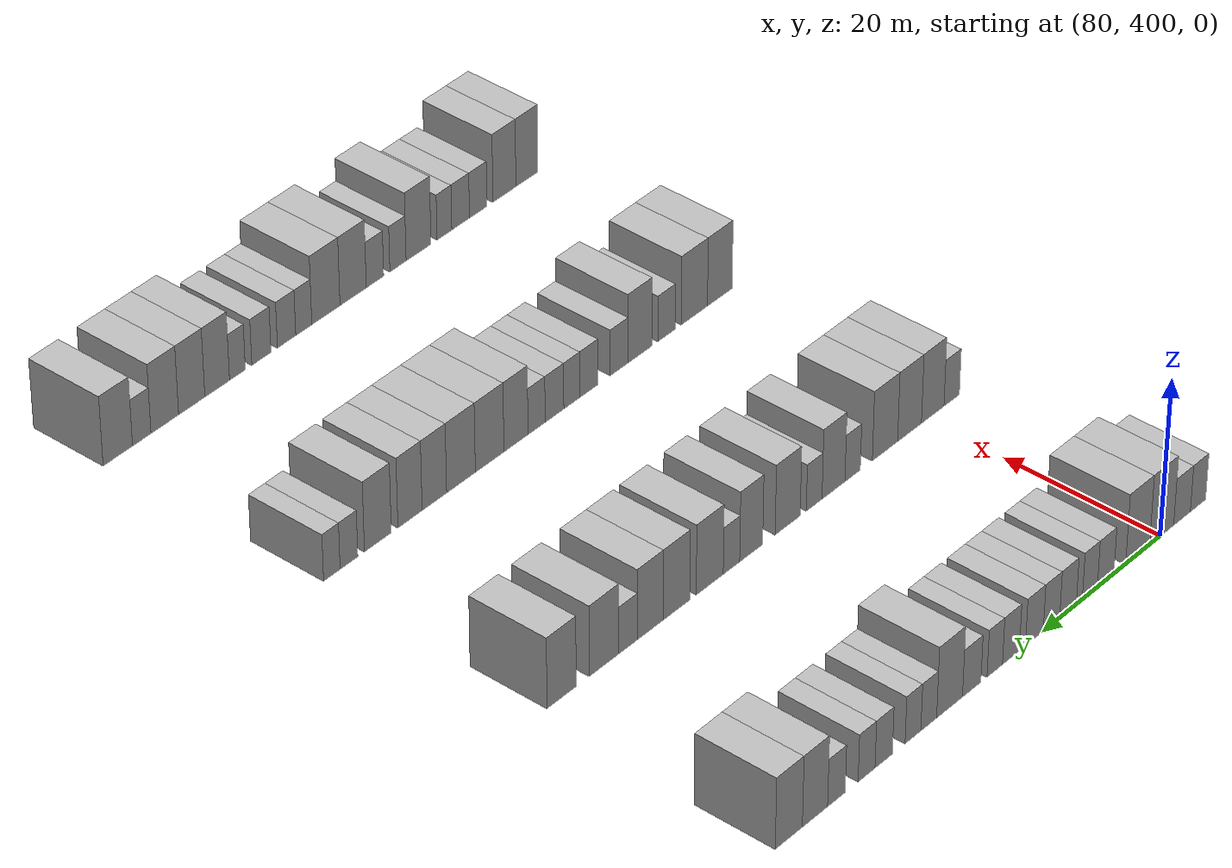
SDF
<sdf version="1.6">
 <world name="default">
  <model name="building_661">
   <static>1</static>
   <pose>85.0000 393.5579 0 0.000000 0.000000 0.000000</pose>
   <link name="link">
    <pose>0 0 3.00 0 0 0</pose>
    <collision name="collision"><geometry><box><size>10.0000 2.6555 6.0000</size></box></geometry></collision>
    <visual name="visual">
     <cast_shadows>0</cast_shadows>
     <geometry><box><size>10.0000 2.6555 6.0000</size></box></geometry>
     <material>
      <script>
       <uri>model://HANNAS_wall/materials/scripts</uri>
       <uri>model://HANNAS_wall/materials/textures</uri>
       <name>vrc/HANNAS_wall</name>
      </script>
     </material>
    </visual>
   </link>
  </model>
  <model name="building_662">
   <static>1</static>
   <pose>85.0000 396.3360 0 0.000000 0.000000 0.000000</pose>
   <link name="link">
    <pose>0 0 3.00 0 0 0</pose>
    <collision name="collision"><geometry><box><size>10.0000 2.9007 6.0000</size></box></geometry></collision>
    <visual name="visual">
     <cast_shadows>0</cast_shadows>
     <geometry><box><size>10.0000 2.9007 6.0000</size></box></geometry>
     <material>
      <script>
       <uri>model://HANNAS_wall/materials/scripts</uri>
       <uri>model://HANNAS_wall/materials/textures</uri>
       <name>vrc/HANNAS_wall</name>
      </script>
     </material>
    </visual>
   </link>
  </model>
  <model name="building_663">
   <static>1</static>
   <pose>85.0000 399.8499 0 0.000000 0.000000 0.000000</pose>
   <link name="link">
    <pose>0 0 4.50 0 0 0</pose>
    <collision name="collision"><geometry><box><size>10.0000 4.1272 9.0000</size></box></geometry></collision>
    <visual name="visual">
     <cast_shadows>0</cast_shadows>
     <geometry><box><size>10.0000 4.1272 9.0000</size></box></geometry>
     <material>
      <script>
       <uri>model://HANNAS_wall/materials/scripts</uri>
       <uri>model://HANNAS_wall/materials/textures</uri>
       <name>vrc/HANNAS_wall</name>
      </script>
     </material>
    </visual>
   </link>
  </model>
  <model name="building_664">
   <static>1</static>
   <pose>85.0000 403.9608 0 0.000000 0.000000 0.000000</pose>
   <link name="link">
    <pose>0 0 4.50 0 0 0</pose>
    <collision name="collision"><geometry><box><size>10.0000 4.0947 9.0000</size></box></geometry></collision>
    <visual name="visual">
     <cast_shadows>0</cast_shadows>
     <geometry><box><size>10.0000 4.0947 9.0000</size></box></geometry>
     <material>
      <script>
       <uri>model://HANNAS_wall/materials/scripts</uri>
       <uri>model://HANNAS_wall/materials/textures</uri>
       <name>vrc/HANNAS_wall</name>
      </script>
     </material>
    </visual>
   </link>
  </model>
  <model name="building_665">
   <static>1</static>
   <pose>85.0000 409.4031 0 0.000000 0.000000 0.000000</pose>
   <link name="link">
    <pose>0 0 3.00 0 0 0</pose>
    <collision name="collision"><geometry><box><size>10.0000 2.7898 6.0000</size></box></geometry></collision>
    <visual name="visual">
     <cast_shadows>0</cast_shadows>
     <geometry><box><size>10.0000 2.7898 6.0000</size></box></geometry>
     <material>
      <script>
       <uri>model://HANNAS_wall/materials/scripts</uri>
       <uri>model://HANNAS_wall/materials/textures</uri>
       <name>vrc/HANNAS_wall</name>
      </script>
     </material>
    </visual>
   </link>
  </model>
  <model name="building_666">
   <static>1</static>
   <pose>85.0000 412.0648 0 0.000000 0.000000 0.000000</pose>
   <link name="link">
    <pose>0 0 3.00 0 0 0</pose>
    <collision name="collision"><geometry><box><size>10.0000 2.5337 6.0000</size></box></geometry></collision>
    <visual name="visual">
     <cast_shadows>0</cast_shadows>
     <geometry><box><size>10.0000 2.5337 6.0000</size></box></geometry>
     <material>
      <script>
       <uri>model://HANNAS_wall/materials/scripts</uri>
       <uri>model://HANNAS_wall/materials/textures</uri>
       <name>vrc/HANNAS_wall</name>
      </script>
     </material>
    </visual>
   </link>
  </model>
  <model name="building_667">
   <static>1</static>
   <pose>85.0000 415.7203 0 0.000000 0.000000 0.000000</pose>
   <link name="link">
    <pose>0 0 3.00 0 0 0</pose>
    <collision name="collision"><geometry><box><size>10.0000 2.7773 6.0000</size></box></geometry></collision>
    <visual name="visual">
     <cast_shadows>0</cast_shadows>
     <geometry><box><size>10.0000 2.7773 6.0000</size></box></geometry>
     <material>
      <script>
       <uri>model://HANNAS_wall/materials/scripts</uri>
       <uri>model://HANNAS_wall/materials/textures</uri>
       <name>vrc/HANNAS_wall</name>
      </script>
     </material>
    </visual>
   </link>
  </model>
  <model name="building_668">
   <static>1</static>
   <pose>85.0000 418.4652 0 0.000000 0.000000 0.000000</pose>
   <link name="link">
    <pose>0 0 3.00 0 0 0</pose>
    <collision name="collision"><geometry><box><size>10.0000 2.7123 6.0000</size></box></geometry></collision>
    <visual name="visual">
     <cast_shadows>0</cast_shadows>
     <geometry><box><size>10.0000 2.7123 6.0000</size></box></geometry>
     <material>
      <script>
       <uri>model://HANNAS_wall/materials/scripts</uri>
       <uri>model://HANNAS_wall/materials/textures</uri>
       <name>vrc/HANNAS_wall</name>
      </script>
     </material>
    </visual>
   </link>
  </model>
  <model name="building_669">
   <static>1</static>
   <pose>85.0000 421.2909 0 0.000000 0.000000 0.000000</pose>
   <link name="link">
    <pose>0 0 3.00 0 0 0</pose>
    <collision name="collision"><geometry><box><size>10.0000 2.9391 6.0000</size></box></geometry></collision>
    <visual name="visual">
     <cast_shadows>0</cast_shadows>
     <geometry><box><size>10.0000 2.9391 6.0000</size></box></geometry>
     <material>
      <script>
       <uri>model://HANNAS_wall/materials/scripts</uri>
       <uri>model://HANNAS_wall/materials/textures</uri>
       <name>vrc/HANNAS_wall</name>
      </script>
     </material>
    </visual>
   </link>
  </model>
  <model name="building_670">
   <static>1</static>
   <pose>85.0000 425.1434 0 0.000000 0.000000 0.000000</pose>
   <link name="link">
    <pose>0 0 3.00 0 0 0</pose>
    <collision name="collision"><geometry><box><size>10.0000 2.7660 6.0000</size></box></geometry></collision>
    <visual name="visual">
     <cast_shadows>0</cast_shadows>
     <geometry><box><size>10.0000 2.7660 6.0000</size></box></geometry>
     <material>
      <script>
       <uri>model://HANNAS_wall/materials/scripts</uri>
       <uri>model://HANNAS_wall/materials/textures</uri>
       <name>vrc/HANNAS_wall</name>
      </script>
     </material>
    </visual>
   </link>
  </model>
  <model name="building_671">
   <static>1</static>
   <pose>85.0000 427.7820 0 0.000000 0.000000 0.000000</pose>
   <link name="link">
    <pose>0 0 3.00 0 0 0</pose>
    <collision name="collision"><geometry><box><size>10.0000 2.5112 6.0000</size></box></geometry></collision>
    <visual name="visual">
     <cast_shadows>0</cast_shadows>
     <geometry><box><size>10.0000 2.5112 6.0000</size></box></geometry>
     <material>
      <script>
       <uri>model://HANNAS_wall/materials/scripts</uri>
       <uri>model://HANNAS_wall/materials/textures</uri>
       <name>vrc/HANNAS_wall</name>
      </script>
     </material>
    </visual>
   </link>
  </model>
  <model name="building_672">
   <static>1</static>
   <pose>85.0000 431.5215 0 0.000000 0.000000 0.000000</pose>
   <link name="link">
    <pose>0 0 3.00 0 0 0</pose>
    <collision name="collision"><geometry><box><size>10.0000 2.9678 6.0000</size></box></geometry></collision>
    <visual name="visual">
     <cast_shadows>0</cast_shadows>
     <geometry><box><size>10.0000 2.9678 6.0000</size></box></geometry>
     <material>
      <script>
       <uri>model://HANNAS_wall/materials/scripts</uri>
       <uri>model://HANNAS_wall/materials/textures</uri>
       <name>vrc/HANNAS_wall</name>
      </script>
     </material>
    </visual>
   </link>
  </model>
  <model name="building_673">
   <static>1</static>
   <pose>85.0000 435.0747 0 0.000000 0.000000 0.000000</pose>
   <link name="link">
    <pose>0 0 4.50 0 0 0</pose>
    <collision name="collision"><geometry><box><size>10.0000 4.1387 9.0000</size></box></geometry></collision>
    <visual name="visual">
     <cast_shadows>0</cast_shadows>
     <geometry><box><size>10.0000 4.1387 9.0000</size></box></geometry>
     <material>
      <script>
       <uri>model://HANNAS_wall/materials/scripts</uri>
       <uri>model://HANNAS_wall/materials/textures</uri>
       <name>vrc/HANNAS_wall</name>
      </script>
     </material>
    </visual>
   </link>
  </model>
  <model name="building_674">
   <static>1</static>
   <pose>85.0000 438.4006 0 0.000000 0.000000 0.000000</pose>
   <link name="link">
    <pose>0 0 3.00 0 0 0</pose>
    <collision name="collision"><geometry><box><size>10.0000 2.5131 6.0000</size></box></geometry></collision>
    <visual name="visual">
     <cast_shadows>0</cast_shadows>
     <geometry><box><size>10.0000 2.5131 6.0000</size></box></geometry>
     <material>
      <script>
       <uri>model://HANNAS_wall/materials/scripts</uri>
       <uri>model://HANNAS_wall/materials/textures</uri>
       <name>vrc/HANNAS_wall</name>
      </script>
     </material>
    </visual>
   </link>
  </model>
  <model name="building_675">
   <static>1</static>
   <pose>85.0000 440.9042 0 0.000000 0.000000 0.000000</pose>
   <link name="link">
    <pose>0 0 3.00 0 0 0</pose>
    <collision name="collision"><geometry><box><size>10.0000 2.4942 6.0000</size></box></geometry></collision>
    <visual name="visual">
     <cast_shadows>0</cast_shadows>
     <geometry><box><size>10.0000 2.4942 6.0000</size></box></geometry>
     <material>
      <script>
       <uri>model://HANNAS_wall/materials/scripts</uri>
       <uri>model://HANNAS_wall/materials/textures</uri>
       <name>vrc/HANNAS_wall</name>
      </script>
     </material>
    </visual>
   </link>
  </model>
  <model name="building_676">
   <static>1</static>
   <pose>85.0000 445.5110 0 0.000000 0.000000 0.000000</pose>
   <link name="link">
    <pose>0 0 3.00 0 0 0</pose>
    <collision name="collision"><geometry><box><size>10.0000 2.7194 6.0000</size></box></geometry></collision>
    <visual name="visual">
     <cast_shadows>0</cast_shadows>
     <geometry><box><size>10.0000 2.7194 6.0000</size></box></geometry>
     <material>
      <script>
       <uri>model://HANNAS_wall/materials/scripts</uri>
       <uri>model://HANNAS_wall/materials/textures</uri>
       <name>vrc/HANNAS_wall</name>
      </script>
     </material>
    </visual>
   </link>
  </model>
  <model name="building_677">
   <static>1</static>
   <pose>85.0000 448.1878 0 0.000000 0.000000 0.000000</pose>
   <link name="link">
    <pose>0 0 3.00 0 0 0</pose>
    <collision name="collision"><geometry><box><size>10.0000 2.6342 6.0000</size></box></geometry></collision>
    <visual name="visual">
     <cast_shadows>0</cast_shadows>
     <geometry><box><size>10.0000 2.6342 6.0000</size></box></geometry>
     <material>
      <script>
       <uri>model://HANNAS_wall/materials/scripts</uri>
       <uri>model://HANNAS_wall/materials/textures</uri>
       <name>vrc/HANNAS_wall</name>
      </script>
     </material>
    </visual>
   </link>
  </model>
  <model name="building_678">
   <static>1</static>
   <pose>85.0000 452.8680 0 0.000000 0.000000 0.000000</pose>
   <link name="link">
    <pose>0 0 3.00 0 0 0</pose>
    <collision name="collision"><geometry><box><size>10.0000 2.7262 6.0000</size></box></geometry></collision>
    <visual name="visual">
     <cast_shadows>0</cast_shadows>
     <geometry><box><size>10.0000 2.7262 6.0000</size></box></geometry>
     <material>
      <script>
       <uri>model://HANNAS_wall/materials/scripts</uri>
       <uri>model://HANNAS_wall/materials/textures</uri>
       <name>vrc/HANNAS_wall</name>
      </script>
     </material>
    </visual>
   </link>
  </model>
  <model name="building_679">
   <static>1</static>
   <pose>85.0000 456.1625 0 0.000000 0.000000 0.000000</pose>
   <link name="link">
    <pose>0 0 4.50 0 0 0</pose>
    <collision name="collision"><geometry><box><size>10.0000 3.8630 9.0000</size></box></geometry></collision>
    <visual name="visual">
     <cast_shadows>0</cast_shadows>
     <geometry><box><size>10.0000 3.8630 9.0000</size></box></geometry>
     <material>
      <script>
       <uri>model://HANNAS_wall/materials/scripts</uri>
       <uri>model://HANNAS_wall/materials/textures</uri>
       <name>vrc/HANNAS_wall</name>
      </script>
     </material>
    </visual>
   </link>
  </model>
  <model name="building_680">
   <static>1</static>
   <pose>85.0000 460.1552 0 0.000000 0.000000 0.000000</pose>
   <link name="link">
    <pose>0 0 4.50 0 0 0</pose>
    <collision name="collision"><geometry><box><size>10.0000 4.1223 9.0000</size></box></geometry></collision>
    <visual name="visual">
     <cast_shadows>0</cast_shadows>
     <geometry><box><size>10.0000 4.1223 9.0000</size></box></geometry>
     <material>
      <script>
       <uri>model://HANNAS_wall/materials/scripts</uri>
       <uri>model://HANNAS_wall/materials/textures</uri>
       <name>vrc/HANNAS_wall</name>
      </script>
     </material>
    </visual>
   </link>
  </model>
  <model name="building_904">
   <static>1</static>
   <pose>115.0000 395.7468 0 0.000000 0.000000 0.000000</pose>
   <link name="link">
    <pose>0 0 3.00 0 0 0</pose>
    <collision name="collision"><geometry><box><size>10.0000 2.6313 6.0000</size></box></geometry></collision>
    <visual name="visual">
     <cast_shadows>0</cast_shadows>
     <geometry><box><size>10.0000 2.6313 6.0000</size></box></geometry>
     <material>
      <script>
       <uri>model://HANNAS_wall/materials/scripts</uri>
       <uri>model://HANNAS_wall/materials/textures</uri>
       <name>vrc/HANNAS_wall</name>
      </script>
     </material>
    </visual>
   </link>
  </model>
  <model name="building_905">
   <static>1</static>
   <pose>115.0000 398.9806 0 0.000000 0.000000 0.000000</pose>
   <link name="link">
    <pose>0 0 4.50 0 0 0</pose>
    <collision name="collision"><geometry><box><size>10.0000 3.8362 9.0000</size></box></geometry></collision>
    <visual name="visual">
     <cast_shadows>0</cast_shadows>
     <geometry><box><size>10.0000 3.8362 9.0000</size></box></geometry>
     <material>
      <script>
       <uri>model://HANNAS_wall/materials/scripts</uri>
       <uri>model://HANNAS_wall/materials/textures</uri>
       <name>vrc/HANNAS_wall</name>
      </script>
     </material>
    </visual>
   </link>
  </model>
  <model name="building_906">
   <static>1</static>
   <pose>115.0000 402.9096 0 0.000000 0.000000 0.000000</pose>
   <link name="link">
    <pose>0 0 4.50 0 0 0</pose>
    <collision name="collision"><geometry><box><size>10.0000 4.0219 9.0000</size></box></geometry></collision>
    <visual name="visual">
     <cast_shadows>0</cast_shadows>
     <geometry><box><size>10.0000 4.0219 9.0000</size></box></geometry>
     <material>
      <script>
       <uri>model://HANNAS_wall/materials/scripts</uri>
       <uri>model://HANNAS_wall/materials/textures</uri>
       <name>vrc/HANNAS_wall</name>
      </script>
     </material>
    </visual>
   </link>
  </model>
  <model name="building_907">
   <static>1</static>
   <pose>115.0000 407.0328 0 0.000000 0.000000 0.000000</pose>
   <link name="link">
    <pose>0 0 4.50 0 0 0</pose>
    <collision name="collision"><geometry><box><size>10.0000 4.2246 9.0000</size></box></geometry></collision>
    <visual name="visual">
     <cast_shadows>0</cast_shadows>
     <geometry><box><size>10.0000 4.2246 9.0000</size></box></geometry>
     <material>
      <script>
       <uri>model://HANNAS_wall/materials/scripts</uri>
       <uri>model://HANNAS_wall/materials/textures</uri>
       <name>vrc/HANNAS_wall</name>
      </script>
     </material>
    </visual>
   </link>
  </model>
  <model name="building_908">
   <static>1</static>
   <pose>115.0000 412.4163 0 0.000000 0.000000 0.000000</pose>
   <link name="link">
    <pose>0 0 3.00 0 0 0</pose>
    <collision name="collision"><geometry><box><size>10.0000 2.5422 6.0000</size></box></geometry></collision>
    <visual name="visual">
     <cast_shadows>0</cast_shadows>
     <geometry><box><size>10.0000 2.5422 6.0000</size></box></geometry>
     <material>
      <script>
       <uri>model://HANNAS_wall/materials/scripts</uri>
       <uri>model://HANNAS_wall/materials/textures</uri>
       <name>vrc/HANNAS_wall</name>
      </script>
     </material>
    </visual>
   </link>
  </model>
  <model name="building_909">
   <static>1</static>
   <pose>115.0000 415.5724 0 0.000000 0.000000 0.000000</pose>
   <link name="link">
    <pose>0 0 4.50 0 0 0</pose>
    <collision name="collision"><geometry><box><size>10.0000 3.7701 9.0000</size></box></geometry></collision>
    <visual name="visual">
     <cast_shadows>0</cast_shadows>
     <geometry><box><size>10.0000 3.7701 9.0000</size></box></geometry>
     <material>
      <script>
       <uri>model://HANNAS_wall/materials/scripts</uri>
       <uri>model://HANNAS_wall/materials/textures</uri>
       <name>vrc/HANNAS_wall</name>
      </script>
     </material>
    </visual>
   </link>
  </model>
  <model name="building_910">
   <static>1</static>
   <pose>115.0000 418.7434 0 0.000000 0.000000 0.000000</pose>
   <link name="link">
    <pose>0 0 3.00 0 0 0</pose>
    <collision name="collision"><geometry><box><size>10.0000 2.5719 6.0000</size></box></geometry></collision>
    <visual name="visual">
     <cast_shadows>0</cast_shadows>
     <geometry><box><size>10.0000 2.5719 6.0000</size></box></geometry>
     <material>
      <script>
       <uri>model://HANNAS_wall/materials/scripts</uri>
       <uri>model://HANNAS_wall/materials/textures</uri>
       <name>vrc/HANNAS_wall</name>
      </script>
     </material>
    </visual>
   </link>
  </model>
  <model name="building_911">
   <static>1</static>
   <pose>115.0000 423.0607 0 0.000000 0.000000 0.000000</pose>
   <link name="link">
    <pose>0 0 4.50 0 0 0</pose>
    <collision name="collision"><geometry><box><size>10.0000 4.0627 9.0000</size></box></geometry></collision>
    <visual name="visual">
     <cast_shadows>0</cast_shadows>
     <geometry><box><size>10.0000 4.0627 9.0000</size></box></geometry>
     <material>
      <script>
       <uri>model://HANNAS_wall/materials/scripts</uri>
       <uri>model://HANNAS_wall/materials/textures</uri>
       <name>vrc/HANNAS_wall</name>
      </script>
     </material>
    </visual>
   </link>
  </model>
  <model name="building_912">
   <static>1</static>
   <pose>115.0000 428.9340 0 0.000000 0.000000 0.000000</pose>
   <link name="link">
    <pose>0 0 4.50 0 0 0</pose>
    <collision name="collision"><geometry><box><size>10.0000 3.6838 9.0000</size></box></geometry></collision>
    <visual name="visual">
     <cast_shadows>0</cast_shadows>
     <geometry><box><size>10.0000 3.6838 9.0000</size></box></geometry>
     <material>
      <script>
       <uri>model://HANNAS_wall/materials/scripts</uri>
       <uri>model://HANNAS_wall/materials/textures</uri>
       <name>vrc/HANNAS_wall</name>
      </script>
     </material>
    </visual>
   </link>
  </model>
  <model name="building_913">
   <static>1</static>
   <pose>115.0000 432.0807 0 0.000000 0.000000 0.000000</pose>
   <link name="link">
    <pose>0 0 3.00 0 0 0</pose>
    <collision name="collision"><geometry><box><size>10.0000 2.6095 6.0000</size></box></geometry></collision>
    <visual name="visual">
     <cast_shadows>0</cast_shadows>
     <geometry><box><size>10.0000 2.6095 6.0000</size></box></geometry>
     <material>
      <script>
       <uri>model://HANNAS_wall/materials/scripts</uri>
       <uri>model://HANNAS_wall/materials/textures</uri>
       <name>vrc/HANNAS_wall</name>
      </script>
     </material>
    </visual>
   </link>
  </model>
  <model name="building_914">
   <static>1</static>
   <pose>115.0000 435.5246 0 0.000000 0.000000 0.000000</pose>
   <link name="link">
    <pose>0 0 4.50 0 0 0</pose>
    <collision name="collision"><geometry><box><size>10.0000 4.2783 9.0000</size></box></geometry></collision>
    <visual name="visual">
     <cast_shadows>0</cast_shadows>
     <geometry><box><size>10.0000 4.2783 9.0000</size></box></geometry>
     <material>
      <script>
       <uri>model://HANNAS_wall/materials/scripts</uri>
       <uri>model://HANNAS_wall/materials/textures</uri>
       <name>vrc/HANNAS_wall</name>
      </script>
     </material>
    </visual>
   </link>
  </model>
  <model name="building_915">
   <static>1</static>
   <pose>115.0000 440.7452 0 0.000000 0.000000 0.000000</pose>
   <link name="link">
    <pose>0 0 4.50 0 0 0</pose>
    <collision name="collision"><geometry><box><size>10.0000 4.1629 9.0000</size></box></geometry></collision>
    <visual name="visual">
     <cast_shadows>0</cast_shadows>
     <geometry><box><size>10.0000 4.1629 9.0000</size></box></geometry>
     <material>
      <script>
       <uri>model://HANNAS_wall/materials/scripts</uri>
       <uri>model://HANNAS_wall/materials/textures</uri>
       <name>vrc/HANNAS_wall</name>
      </script>
     </material>
    </visual>
   </link>
  </model>
  <model name="building_916">
   <static>1</static>
   <pose>115.0000 444.8431 0 0.000000 0.000000 0.000000</pose>
   <link name="link">
    <pose>0 0 4.50 0 0 0</pose>
    <collision name="collision"><geometry><box><size>10.0000 4.0330 9.0000</size></box></geometry></collision>
    <visual name="visual">
     <cast_shadows>0</cast_shadows>
     <geometry><box><size>10.0000 4.0330 9.0000</size></box></geometry>
     <material>
      <script>
       <uri>model://HANNAS_wall/materials/scripts</uri>
       <uri>model://HANNAS_wall/materials/textures</uri>
       <name>vrc/HANNAS_wall</name>
      </script>
     </material>
    </visual>
   </link>
  </model>
  <model name="building_917">
   <static>1</static>
   <pose>115.0000 448.2803 0 0.000000 0.000000 0.000000</pose>
   <link name="link">
    <pose>0 0 3.00 0 0 0</pose>
    <collision name="collision"><geometry><box><size>10.0000 2.8413 6.0000</size></box></geometry></collision>
    <visual name="visual">
     <cast_shadows>0</cast_shadows>
     <geometry><box><size>10.0000 2.8413 6.0000</size></box></geometry>
     <material>
      <script>
       <uri>model://HANNAS_wall/materials/scripts</uri>
       <uri>model://HANNAS_wall/materials/textures</uri>
       <name>vrc/HANNAS_wall</name>
      </script>
     </material>
    </visual>
   </link>
  </model>
  <model name="building_918">
   <static>1</static>
   <pose>115.0000 451.9478 0 0.000000 0.000000 0.000000</pose>
   <link name="link">
    <pose>0 0 4.50 0 0 0</pose>
    <collision name="collision"><geometry><box><size>10.0000 4.4936 9.0000</size></box></geometry></collision>
    <visual name="visual">
     <cast_shadows>0</cast_shadows>
     <geometry><box><size>10.0000 4.4936 9.0000</size></box></geometry>
     <material>
      <script>
       <uri>model://HANNAS_wall/materials/scripts</uri>
       <uri>model://HANNAS_wall/materials/textures</uri>
       <name>vrc/HANNAS_wall</name>
      </script>
     </material>
    </visual>
   </link>
  </model>
  <model name="building_919">
   <static>1</static>
   <pose>115.0000 458.3902 0 0.000000 0.000000 0.000000</pose>
   <link name="link">
    <pose>0 0 4.50 0 0 0</pose>
    <collision name="collision"><geometry><box><size>10.0000 4.3913 9.0000</size></box></geometry></collision>
    <visual name="visual">
     <cast_shadows>0</cast_shadows>
     <geometry><box><size>10.0000 4.3913 9.0000</size></box></geometry>
     <material>
      <script>
       <uri>model://HANNAS_wall/materials/scripts</uri>
       <uri>model://HANNAS_wall/materials/textures</uri>
       <name>vrc/HANNAS_wall</name>
      </script>
     </material>
    </visual>
   </link>
  </model>
  <model name="building_1128">
   <static>1</static>
   <pose>145.0000 397.3332 0 0.000000 0.000000 0.000000</pose>
   <link name="link">
    <pose>0 0 4.50 0 0 0</pose>
    <collision name="collision"><geometry><box><size>10.0000 4.1547 9.0000</size></box></geometry></collision>
    <visual name="visual">
     <cast_shadows>0</cast_shadows>
     <geometry><box><size>10.0000 4.1547 9.0000</size></box></geometry>
     <material>
      <script>
       <uri>model://HANNAS_wall/materials/scripts</uri>
       <uri>model://HANNAS_wall/materials/textures</uri>
       <name>vrc/HANNAS_wall</name>
      </script>
     </material>
    </visual>
   </link>
  </model>
  <model name="building_1129">
   <static>1</static>
   <pose>145.0000 401.6008 0 0.000000 0.000000 0.000000</pose>
   <link name="link">
    <pose>0 0 4.50 0 0 0</pose>
    <collision name="collision"><geometry><box><size>10.0000 4.3806 9.0000</size></box></geometry></collision>
    <visual name="visual">
     <cast_shadows>0</cast_shadows>
     <geometry><box><size>10.0000 4.3806 9.0000</size></box></geometry>
     <material>
      <script>
       <uri>model://HANNAS_wall/materials/scripts</uri>
       <uri>model://HANNAS_wall/materials/textures</uri>
       <name>vrc/HANNAS_wall</name>
      </script>
     </material>
    </visual>
   </link>
  </model>
  <model name="building_1130">
   <static>1</static>
   <pose>145.0000 406.2316 0 0.000000 0.000000 0.000000</pose>
   <link name="link">
    <pose>0 0 3.00 0 0 0</pose>
    <collision name="collision"><geometry><box><size>10.0000 2.8809 6.0000</size></box></geometry></collision>
    <visual name="visual">
     <cast_shadows>0</cast_shadows>
     <geometry><box><size>10.0000 2.8809 6.0000</size></box></geometry>
     <material>
      <script>
       <uri>model://HANNAS_wall/materials/scripts</uri>
       <uri>model://HANNAS_wall/materials/textures</uri>
       <name>vrc/HANNAS_wall</name>
      </script>
     </material>
    </visual>
   </link>
  </model>
  <model name="building_1131">
   <static>1</static>
   <pose>145.0000 410.6252 0 0.000000 0.000000 0.000000</pose>
   <link name="link">
    <pose>0 0 4.50 0 0 0</pose>
    <collision name="collision"><geometry><box><size>10.0000 3.9064 9.0000</size></box></geometry></collision>
    <visual name="visual">
     <cast_shadows>0</cast_shadows>
     <geometry><box><size>10.0000 3.9064 9.0000</size></box></geometry>
     <material>
      <script>
       <uri>model://HANNAS_wall/materials/scripts</uri>
       <uri>model://HANNAS_wall/materials/textures</uri>
       <name>vrc/HANNAS_wall</name>
      </script>
     </material>
    </visual>
   </link>
  </model>
  <model name="building_1132">
   <static>1</static>
   <pose>145.0000 414.0297 0 0.000000 0.000000 0.000000</pose>
   <link name="link">
    <pose>0 0 3.00 0 0 0</pose>
    <collision name="collision"><geometry><box><size>10.0000 2.9025 6.0000</size></box></geometry></collision>
    <visual name="visual">
     <cast_shadows>0</cast_shadows>
     <geometry><box><size>10.0000 2.9025 6.0000</size></box></geometry>
     <material>
      <script>
       <uri>model://HANNAS_wall/materials/scripts</uri>
       <uri>model://HANNAS_wall/materials/textures</uri>
       <name>vrc/HANNAS_wall</name>
      </script>
     </material>
    </visual>
   </link>
  </model>
  <model name="building_1133">
   <static>1</static>
   <pose>145.0000 418.9319 0 0.000000 0.000000 0.000000</pose>
   <link name="link">
    <pose>0 0 3.00 0 0 0</pose>
    <collision name="collision"><geometry><box><size>10.0000 2.9019 6.0000</size></box></geometry></collision>
    <visual name="visual">
     <cast_shadows>0</cast_shadows>
     <geometry><box><size>10.0000 2.9019 6.0000</size></box></geometry>
     <material>
      <script>
       <uri>model://HANNAS_wall/materials/scripts</uri>
       <uri>model://HANNAS_wall/materials/textures</uri>
       <name>vrc/HANNAS_wall</name>
      </script>
     </material>
    </visual>
   </link>
  </model>
  <model name="building_1134">
   <static>1</static>
   <pose>145.0000 421.6780 0 0.000000 0.000000 0.000000</pose>
   <link name="link">
    <pose>0 0 3.00 0 0 0</pose>
    <collision name="collision"><geometry><box><size>10.0000 2.5903 6.0000</size></box></geometry></collision>
    <visual name="visual">
     <cast_shadows>0</cast_shadows>
     <geometry><box><size>10.0000 2.5903 6.0000</size></box></geometry>
     <material>
      <script>
       <uri>model://HANNAS_wall/materials/scripts</uri>
       <uri>model://HANNAS_wall/materials/textures</uri>
       <name>vrc/HANNAS_wall</name>
      </script>
     </material>
    </visual>
   </link>
  </model>
  <model name="building_1135">
   <static>1</static>
   <pose>145.0000 424.4684 0 0.000000 0.000000 0.000000</pose>
   <link name="link">
    <pose>0 0 3.00 0 0 0</pose>
    <collision name="collision"><geometry><box><size>10.0000 2.9905 6.0000</size></box></geometry></collision>
    <visual name="visual">
     <cast_shadows>0</cast_shadows>
     <geometry><box><size>10.0000 2.9905 6.0000</size></box></geometry>
     <material>
      <script>
       <uri>model://HANNAS_wall/materials/scripts</uri>
       <uri>model://HANNAS_wall/materials/textures</uri>
       <name>vrc/HANNAS_wall</name>
      </script>
     </material>
    </visual>
   </link>
  </model>
  <model name="building_1136">
   <static>1</static>
   <pose>145.0000 427.3245 0 0.000000 0.000000 0.000000</pose>
   <link name="link">
    <pose>0 0 3.00 0 0 0</pose>
    <collision name="collision"><geometry><box><size>10.0000 2.7218 6.0000</size></box></geometry></collision>
    <visual name="visual">
     <cast_shadows>0</cast_shadows>
     <geometry><box><size>10.0000 2.7218 6.0000</size></box></geometry>
     <material>
      <script>
       <uri>model://HANNAS_wall/materials/scripts</uri>
       <uri>model://HANNAS_wall/materials/textures</uri>
       <name>vrc/HANNAS_wall</name>
      </script>
     </material>
    </visual>
   </link>
  </model>
  <model name="building_1137">
   <static>1</static>
   <pose>145.0000 430.5860 0 0.000000 0.000000 0.000000</pose>
   <link name="link">
    <pose>0 0 4.50 0 0 0</pose>
    <collision name="collision"><geometry><box><size>10.0000 3.8011 9.0000</size></box></geometry></collision>
    <visual name="visual">
     <cast_shadows>0</cast_shadows>
     <geometry><box><size>10.0000 3.8011 9.0000</size></box></geometry>
     <material>
      <script>
       <uri>model://HANNAS_wall/materials/scripts</uri>
       <uri>model://HANNAS_wall/materials/textures</uri>
       <name>vrc/HANNAS_wall</name>
      </script>
     </material>
    </visual>
   </link>
  </model>
  <model name="building_1138">
   <static>1</static>
   <pose>145.0000 434.7266 0 0.000000 0.000000 0.000000</pose>
   <link name="link">
    <pose>0 0 4.50 0 0 0</pose>
    <collision name="collision"><geometry><box><size>10.0000 4.4802 9.0000</size></box></geometry></collision>
    <visual name="visual">
     <cast_shadows>0</cast_shadows>
     <geometry><box><size>10.0000 4.4802 9.0000</size></box></geometry>
     <material>
      <script>
       <uri>model://HANNAS_wall/materials/scripts</uri>
       <uri>model://HANNAS_wall/materials/textures</uri>
       <name>vrc/HANNAS_wall</name>
      </script>
     </material>
    </visual>
   </link>
  </model>
  <model name="building_1139">
   <static>1</static>
   <pose>145.0000 439.1981 0 0.000000 0.000000 0.000000</pose>
   <link name="link">
    <pose>0 0 4.50 0 0 0</pose>
    <collision name="collision"><geometry><box><size>10.0000 4.4627 9.0000</size></box></geometry></collision>
    <visual name="visual">
     <cast_shadows>0</cast_shadows>
     <geometry><box><size>10.0000 4.4627 9.0000</size></box></geometry>
     <material>
      <script>
       <uri>model://HANNAS_wall/materials/scripts</uri>
       <uri>model://HANNAS_wall/materials/textures</uri>
       <name>vrc/HANNAS_wall</name>
      </script>
     </material>
    </visual>
   </link>
  </model>
  <model name="building_1140">
   <static>1</static>
   <pose>145.0000 443.3136 0 0.000000 0.000000 0.000000</pose>
   <link name="link">
    <pose>0 0 4.50 0 0 0</pose>
    <collision name="collision"><geometry><box><size>10.0000 3.7684 9.0000</size></box></geometry></collision>
    <visual name="visual">
     <cast_shadows>0</cast_shadows>
     <geometry><box><size>10.0000 3.7684 9.0000</size></box></geometry>
     <material>
      <script>
       <uri>model://HANNAS_wall/materials/scripts</uri>
       <uri>model://HANNAS_wall/materials/textures</uri>
       <name>vrc/HANNAS_wall</name>
      </script>
     </material>
    </visual>
   </link>
  </model>
  <model name="building_1141">
   <static>1</static>
   <pose>145.0000 447.0512 0 0.000000 0.000000 0.000000</pose>
   <link name="link">
    <pose>0 0 4.50 0 0 0</pose>
    <collision name="collision"><geometry><box><size>10.0000 3.7067 9.0000</size></box></geometry></collision>
    <visual name="visual">
     <cast_shadows>0</cast_shadows>
     <geometry><box><size>10.0000 3.7067 9.0000</size></box></geometry>
     <material>
      <script>
       <uri>model://HANNAS_wall/materials/scripts</uri>
       <uri>model://HANNAS_wall/materials/textures</uri>
       <name>vrc/HANNAS_wall</name>
      </script>
     </material>
    </visual>
   </link>
  </model>
  <model name="building_1142">
   <static>1</static>
   <pose>145.0000 451.9376 0 0.000000 0.000000 0.000000</pose>
   <link name="link">
    <pose>0 0 4.50 0 0 0</pose>
    <collision name="collision"><geometry><box><size>10.0000 4.0660 9.0000</size></box></geometry></collision>
    <visual name="visual">
     <cast_shadows>0</cast_shadows>
     <geometry><box><size>10.0000 4.0660 9.0000</size></box></geometry>
     <material>
      <script>
       <uri>model://HANNAS_wall/materials/scripts</uri>
       <uri>model://HANNAS_wall/materials/textures</uri>
       <name>vrc/HANNAS_wall</name>
      </script>
     </material>
    </visual>
   </link>
  </model>
  <model name="building_1143">
   <static>1</static>
   <pose>145.0000 456.2981 0 0.000000 0.000000 0.000000</pose>
   <link name="link">
    <pose>0 0 3.00 0 0 0</pose>
    <collision name="collision"><geometry><box><size>10.0000 2.6551 6.0000</size></box></geometry></collision>
    <visual name="visual">
     <cast_shadows>0</cast_shadows>
     <geometry><box><size>10.0000 2.6551 6.0000</size></box></geometry>
     <material>
      <script>
       <uri>model://HANNAS_wall/materials/scripts</uri>
       <uri>model://HANNAS_wall/materials/textures</uri>
       <name>vrc/HANNAS_wall</name>
      </script>
     </material>
    </visual>
   </link>
  </model>
  <model name="building_1144">
   <static>1</static>
   <pose>145.0000 458.8590 0 0.000000 0.000000 0.000000</pose>
   <link name="link">
    <pose>0 0 3.00 0 0 0</pose>
    <collision name="collision"><geometry><box><size>10.0000 2.4665 6.0000</size></box></geometry></collision>
    <visual name="visual">
     <cast_shadows>0</cast_shadows>
     <geometry><box><size>10.0000 2.4665 6.0000</size></box></geometry>
     <material>
      <script>
       <uri>model://HANNAS_wall/materials/scripts</uri>
       <uri>model://HANNAS_wall/materials/textures</uri>
       <name>vrc/HANNAS_wall</name>
      </script>
     </material>
    </visual>
   </link>
  </model>
  <model name="building_1344">
   <static>1</static>
   <pose>175.0000 394.1301 0 0.000000 0.000000 0.000000</pose>
   <link name="link">
    <pose>0 0 4.50 0 0 0</pose>
    <collision name="collision"><geometry><box><size>10.0000 3.6965 9.0000</size></box></geometry></collision>
    <visual name="visual">
     <cast_shadows>0</cast_shadows>
     <geometry><box><size>10.0000 3.6965 9.0000</size></box></geometry>
     <material>
      <script>
       <uri>model://HANNAS_wall/materials/scripts</uri>
       <uri>model://HANNAS_wall/materials/textures</uri>
       <name>vrc/HANNAS_wall</name>
      </script>
     </material>
    </visual>
   </link>
  </model>
  <model name="building_1345">
   <static>1</static>
   <pose>175.0000 397.8906 0 0.000000 0.000000 0.000000</pose>
   <link name="link">
    <pose>0 0 4.50 0 0 0</pose>
    <collision name="collision"><geometry><box><size>10.0000 3.8246 9.0000</size></box></geometry></collision>
    <visual name="visual">
     <cast_shadows>0</cast_shadows>
     <geometry><box><size>10.0000 3.8246 9.0000</size></box></geometry>
     <material>
      <script>
       <uri>model://HANNAS_wall/materials/scripts</uri>
       <uri>model://HANNAS_wall/materials/textures</uri>
       <name>vrc/HANNAS_wall</name>
      </script>
     </material>
    </visual>
   </link>
  </model>
  <model name="building_1346">
   <static>1</static>
   <pose>175.0000 402.2468 0 0.000000 0.000000 0.000000</pose>
   <link name="link">
    <pose>0 0 3.00 0 0 0</pose>
    <collision name="collision"><geometry><box><size>10.0000 2.8876 6.0000</size></box></geometry></collision>
    <visual name="visual">
     <cast_shadows>0</cast_shadows>
     <geometry><box><size>10.0000 2.8876 6.0000</size></box></geometry>
     <material>
      <script>
       <uri>model://HANNAS_wall/materials/scripts</uri>
       <uri>model://HANNAS_wall/materials/textures</uri>
       <name>vrc/HANNAS_wall</name>
      </script>
     </material>
    </visual>
   </link>
  </model>
  <model name="building_1347">
   <static>1</static>
   <pose>175.0000 405.1449 0 0.000000 0.000000 0.000000</pose>
   <link name="link">
    <pose>0 0 3.00 0 0 0</pose>
    <collision name="collision"><geometry><box><size>10.0000 2.9086 6.0000</size></box></geometry></collision>
    <visual name="visual">
     <cast_shadows>0</cast_shadows>
     <geometry><box><size>10.0000 2.9086 6.0000</size></box></geometry>
     <material>
      <script>
       <uri>model://HANNAS_wall/materials/scripts</uri>
       <uri>model://HANNAS_wall/materials/textures</uri>
       <name>vrc/HANNAS_wall</name>
      </script>
     </material>
    </visual>
   </link>
  </model>
  <model name="building_1348">
   <static>1</static>
   <pose>175.0000 407.8017 0 0.000000 0.000000 0.000000</pose>
   <link name="link">
    <pose>0 0 3.00 0 0 0</pose>
    <collision name="collision"><geometry><box><size>10.0000 2.4050 6.0000</size></box></geometry></collision>
    <visual name="visual">
     <cast_shadows>0</cast_shadows>
     <geometry><box><size>10.0000 2.4050 6.0000</size></box></geometry>
     <material>
      <script>
       <uri>model://HANNAS_wall/materials/scripts</uri>
       <uri>model://HANNAS_wall/materials/textures</uri>
       <name>vrc/HANNAS_wall</name>
      </script>
     </material>
    </visual>
   </link>
  </model>
  <model name="building_1349">
   <static>1</static>
   <pose>175.0000 412.0186 0 0.000000 0.000000 0.000000</pose>
   <link name="link">
    <pose>0 0 4.50 0 0 0</pose>
    <collision name="collision"><geometry><box><size>10.0000 4.0287 9.0000</size></box></geometry></collision>
    <visual name="visual">
     <cast_shadows>0</cast_shadows>
     <geometry><box><size>10.0000 4.0287 9.0000</size></box></geometry>
     <material>
      <script>
       <uri>model://HANNAS_wall/materials/scripts</uri>
       <uri>model://HANNAS_wall/materials/textures</uri>
       <name>vrc/HANNAS_wall</name>
      </script>
     </material>
    </visual>
   </link>
  </model>
  <model name="building_1350">
   <static>1</static>
   <pose>175.0000 415.3423 0 0.000000 0.000000 0.000000</pose>
   <link name="link">
    <pose>0 0 3.00 0 0 0</pose>
    <collision name="collision"><geometry><box><size>10.0000 2.6188 6.0000</size></box></geometry></collision>
    <visual name="visual">
     <cast_shadows>0</cast_shadows>
     <geometry><box><size>10.0000 2.6188 6.0000</size></box></geometry>
     <material>
      <script>
       <uri>model://HANNAS_wall/materials/scripts</uri>
       <uri>model://HANNAS_wall/materials/textures</uri>
       <name>vrc/HANNAS_wall</name>
      </script>
     </material>
    </visual>
   </link>
  </model>
  <model name="building_1351">
   <static>1</static>
   <pose>175.0000 419.0434 0 0.000000 0.000000 0.000000</pose>
   <link name="link">
    <pose>0 0 3.00 0 0 0</pose>
    <collision name="collision"><geometry><box><size>10.0000 2.7832 6.0000</size></box></geometry></collision>
    <visual name="visual">
     <cast_shadows>0</cast_shadows>
     <geometry><box><size>10.0000 2.7832 6.0000</size></box></geometry>
     <material>
      <script>
       <uri>model://HANNAS_wall/materials/scripts</uri>
       <uri>model://HANNAS_wall/materials/textures</uri>
       <name>vrc/HANNAS_wall</name>
      </script>
     </material>
    </visual>
   </link>
  </model>
  <model name="building_1352">
   <static>1</static>
   <pose>175.0000 422.5259 0 0.000000 0.000000 0.000000</pose>
   <link name="link">
    <pose>0 0 4.50 0 0 0</pose>
    <collision name="collision"><geometry><box><size>10.0000 4.1818 9.0000</size></box></geometry></collision>
    <visual name="visual">
     <cast_shadows>0</cast_shadows>
     <geometry><box><size>10.0000 4.1818 9.0000</size></box></geometry>
     <material>
      <script>
       <uri>model://HANNAS_wall/materials/scripts</uri>
       <uri>model://HANNAS_wall/materials/textures</uri>
       <name>vrc/HANNAS_wall</name>
      </script>
     </material>
    </visual>
   </link>
  </model>
  <model name="building_1353">
   <static>1</static>
   <pose>175.0000 426.8415 0 0.000000 0.000000 0.000000</pose>
   <link name="link">
    <pose>0 0 4.50 0 0 0</pose>
    <collision name="collision"><geometry><box><size>10.0000 4.4495 9.0000</size></box></geometry></collision>
    <visual name="visual">
     <cast_shadows>0</cast_shadows>
     <geometry><box><size>10.0000 4.4495 9.0000</size></box></geometry>
     <material>
      <script>
       <uri>model://HANNAS_wall/materials/scripts</uri>
       <uri>model://HANNAS_wall/materials/textures</uri>
       <name>vrc/HANNAS_wall</name>
      </script>
     </material>
    </visual>
   </link>
  </model>
  <model name="building_1354">
   <static>1</static>
   <pose>175.0000 430.3252 0 0.000000 0.000000 0.000000</pose>
   <link name="link">
    <pose>0 0 3.00 0 0 0</pose>
    <collision name="collision"><geometry><box><size>10.0000 2.5178 6.0000</size></box></geometry></collision>
    <visual name="visual">
     <cast_shadows>0</cast_shadows>
     <geometry><box><size>10.0000 2.5178 6.0000</size></box></geometry>
     <material>
      <script>
       <uri>model://HANNAS_wall/materials/scripts</uri>
       <uri>model://HANNAS_wall/materials/textures</uri>
       <name>vrc/HANNAS_wall</name>
      </script>
     </material>
    </visual>
   </link>
  </model>
  <model name="building_1355">
   <static>1</static>
   <pose>175.0000 433.0119 0 0.000000 0.000000 0.000000</pose>
   <link name="link">
    <pose>0 0 3.00 0 0 0</pose>
    <collision name="collision"><geometry><box><size>10.0000 2.8555 6.0000</size></box></geometry></collision>
    <visual name="visual">
     <cast_shadows>0</cast_shadows>
     <geometry><box><size>10.0000 2.8555 6.0000</size></box></geometry>
     <material>
      <script>
       <uri>model://HANNAS_wall/materials/scripts</uri>
       <uri>model://HANNAS_wall/materials/textures</uri>
       <name>vrc/HANNAS_wall</name>
      </script>
     </material>
    </visual>
   </link>
  </model>
  <model name="building_1356">
   <static>1</static>
   <pose>175.0000 436.9229 0 0.000000 0.000000 0.000000</pose>
   <link name="link">
    <pose>0 0 3.00 0 0 0</pose>
    <collision name="collision"><geometry><box><size>10.0000 2.9667 6.0000</size></box></geometry></collision>
    <visual name="visual">
     <cast_shadows>0</cast_shadows>
     <geometry><box><size>10.0000 2.9667 6.0000</size></box></geometry>
     <material>
      <script>
       <uri>model://HANNAS_wall/materials/scripts</uri>
       <uri>model://HANNAS_wall/materials/textures</uri>
       <name>vrc/HANNAS_wall</name>
      </script>
     </material>
    </visual>
   </link>
  </model>
  <model name="building_1357">
   <static>1</static>
   <pose>175.0000 440.6222 0 0.000000 0.000000 0.000000</pose>
   <link name="link">
    <pose>0 0 3.00 0 0 0</pose>
    <collision name="collision"><geometry><box><size>10.0000 2.4317 6.0000</size></box></geometry></collision>
    <visual name="visual">
     <cast_shadows>0</cast_shadows>
     <geometry><box><size>10.0000 2.4317 6.0000</size></box></geometry>
     <material>
      <script>
       <uri>model://HANNAS_wall/materials/scripts</uri>
       <uri>model://HANNAS_wall/materials/textures</uri>
       <name>vrc/HANNAS_wall</name>
      </script>
     </material>
    </visual>
   </link>
  </model>
  <model name="building_1358">
   <static>1</static>
   <pose>175.0000 443.7229 0 0.000000 0.000000 0.000000</pose>
   <link name="link">
    <pose>0 0 4.50 0 0 0</pose>
    <collision name="collision"><geometry><box><size>10.0000 3.7699 9.0000</size></box></geometry></collision>
    <visual name="visual">
     <cast_shadows>0</cast_shadows>
     <geometry><box><size>10.0000 3.7699 9.0000</size></box></geometry>
     <material>
      <script>
       <uri>model://HANNAS_wall/materials/scripts</uri>
       <uri>model://HANNAS_wall/materials/textures</uri>
       <name>vrc/HANNAS_wall</name>
      </script>
     </material>
    </visual>
   </link>
  </model>
  <model name="building_1359">
   <static>1</static>
   <pose>175.0000 447.5981 0 0.000000 0.000000 0.000000</pose>
   <link name="link">
    <pose>0 0 4.50 0 0 0</pose>
    <collision name="collision"><geometry><box><size>10.0000 3.9805 9.0000</size></box></geometry></collision>
    <visual name="visual">
     <cast_shadows>0</cast_shadows>
     <geometry><box><size>10.0000 3.9805 9.0000</size></box></geometry>
     <material>
      <script>
       <uri>model://HANNAS_wall/materials/scripts</uri>
       <uri>model://HANNAS_wall/materials/textures</uri>
       <name>vrc/HANNAS_wall</name>
      </script>
     </material>
    </visual>
   </link>
  </model>
  <model name="building_1360">
   <static>1</static>
   <pose>175.0000 451.6650 0 0.000000 0.000000 0.000000</pose>
   <link name="link">
    <pose>0 0 4.50 0 0 0</pose>
    <collision name="collision"><geometry><box><size>10.0000 4.1533 9.0000</size></box></geometry></collision>
    <visual name="visual">
     <cast_shadows>0</cast_shadows>
     <geometry><box><size>10.0000 4.1533 9.0000</size></box></geometry>
     <material>
      <script>
       <uri>model://HANNAS_wall/materials/scripts</uri>
       <uri>model://HANNAS_wall/materials/textures</uri>
       <name>vrc/HANNAS_wall</name>
      </script>
     </material>
    </visual>
   </link>
  </model>
  <model name="building_1361">
   <static>1</static>
   <pose>175.0000 455.1206 0 0.000000 0.000000 0.000000</pose>
   <link name="link">
    <pose>0 0 3.00 0 0 0</pose>
    <collision name="collision"><geometry><box><size>10.0000 2.7578 6.0000</size></box></geometry></collision>
    <visual name="visual">
     <cast_shadows>0</cast_shadows>
     <geometry><box><size>10.0000 2.7578 6.0000</size></box></geometry>
     <material>
      <script>
       <uri>model://HANNAS_wall/materials/scripts</uri>
       <uri>model://HANNAS_wall/materials/textures</uri>
       <name>vrc/HANNAS_wall</name>
      </script>
     </material>
    </visual>
   </link>
  </model>
  <model name="building_1362">
   <static>1</static>
   <pose>175.0000 458.6776 0 0.000000 0.000000 0.000000</pose>
   <link name="link">
    <pose>0 0 4.50 0 0 0</pose>
    <collision name="collision"><geometry><box><size>10.0000 4.3563 9.0000</size></box></geometry></collision>
    <visual name="visual">
     <cast_shadows>0</cast_shadows>
     <geometry><box><size>10.0000 4.3563 9.0000</size></box></geometry>
     <material>
      <script>
       <uri>model://HANNAS_wall/materials/scripts</uri>
       <uri>model://HANNAS_wall/materials/textures</uri>
       <name>vrc/HANNAS_wall</name>
      </script>
     </material>
    </visual>
   </link>
  </model>
 </world>
</sdf>
